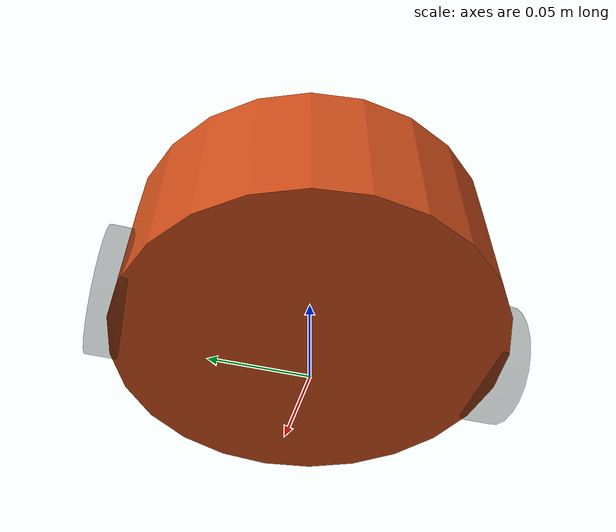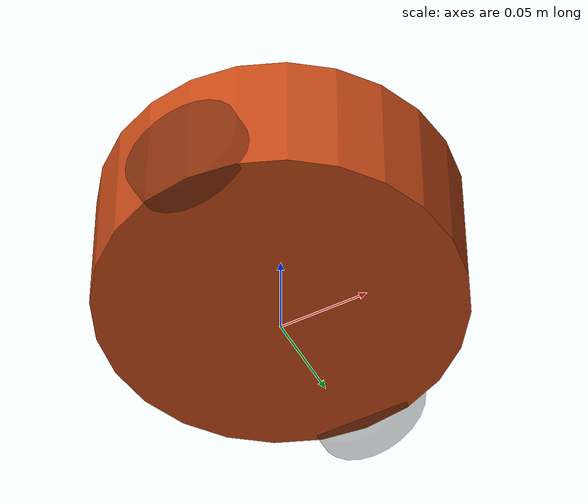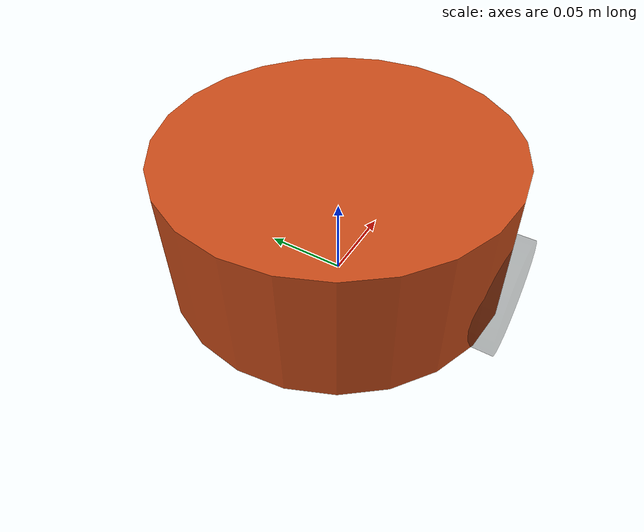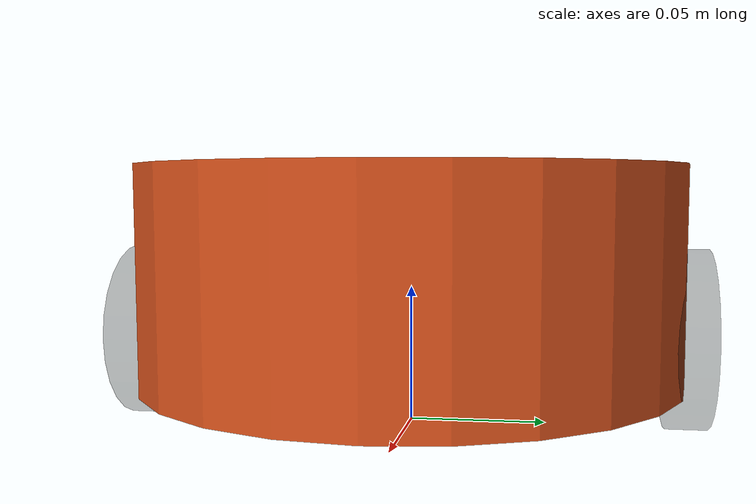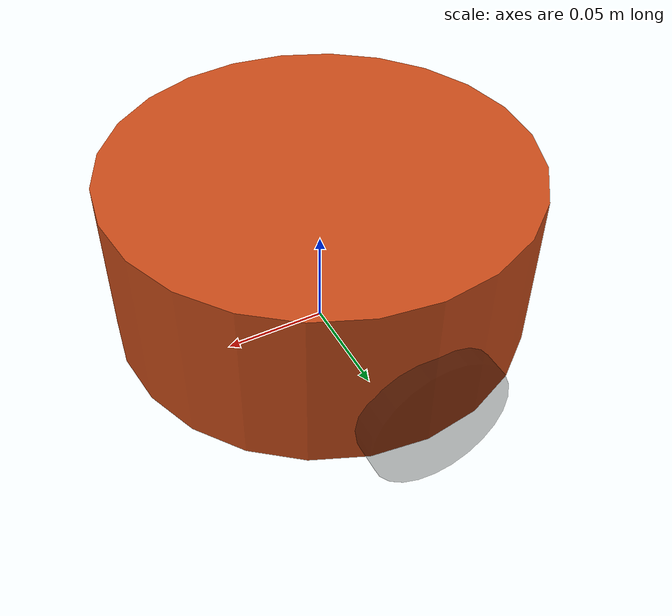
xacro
<robot name="mycar" xmlns:xacro="http://wiki.ros.org/xacro">

    <xacro:macro name="Box_inertial_matrix" params="m l w h">
        <inertial>
            <mass value="${m}" />
            <inertia ixx="${m * (w*w + h*h) / 12.0}" ixy="0.0" ixz="0.0"
                     iyy="${m * (l*l + h*h) / 12.0}" iyz="0.0"
                     izz="${m * (l*l + w*w) / 12.0}" />
        </inertial>
    </xacro:macro>

    <xacro:macro name="cylinder_inertial_matrix" params="m r h">
        <inertial>
            <mass value="${m}" />
            <inertia ixx="${m * (3*r*r + h*h) / 12.0}" ixy="0.0" ixz="0.0"
                     iyy="${m * (3*r*r + h*h) / 12.0}" iyz="0.0"
                     izz="${m * r*r / 2.0}" />
        </inertial>
    </xacro:macro>

    <xacro:property name="wheel_radius" value="0.0325" />
    <xacro:property name="wheel_length" value="0.015" />
    <xacro:property name="PI" value="3.1415927" />
    <xacro:property name="base_link_length" value="0.08" />
    <xacro:property name="lidi_space" value="0.015" />

    <link name="base_footprint">
        <visual>
            <geometry>
                <sphere radius="0.001" />
            </geometry>
        </visual>
    </link>

    <joint name="base_link_to_base_footprint" type="fixed">
        <parent link="base_footprint" />
        <child link="base_link" />
        <origin xyz="0 0 ${lidi_space + base_link_length / 2}" />
    </joint>

    <link name="base_link">
        <visual>
            <geometry>
                <cylinder radius="0.1" length="${base_link_length}" />
            </geometry>
            <origin xyz="0 0 0" rpy="0 0 0" />
            <material name="yellow">
                <color rgba="0.8 0.3 0.1 1.0" />
            </material>
        </visual>
    </link>

    <xacro:macro name="wheel_func" params="wheel_name flag">
        <link name="${wheel_name}_wheel">
            <visual>
                <geometry>
                    <cylinder radius="${wheel_radius}" length="${wheel_length}" />
                </geometry>
                <origin xyz="0 0 0" rpy="${PI / 2} 0 0" />
                <material name="wheel_color">
                    <color rgba="0 0 0 0.3" />
                </material>
            </visual>
        </link>

        <joint name="${wheel_name}_to_link" type="continuous">
            <parent link="base_link" />
            <child link="${wheel_name}_wheel" />

            <origin xyz="0 ${0.1 * flag} ${(base_link_length / 2 + lidi_space - wheel_radius) * -1}" rpy="0 0 0" />
            <axis xyz="0 1 0" />
        </joint>
    </xacro:macro>

    <xacro:wheel_func wheel_name="left" flag="1" />
    <xacro:wheel_func wheel_name="right" flag="-1" />
</robot>
